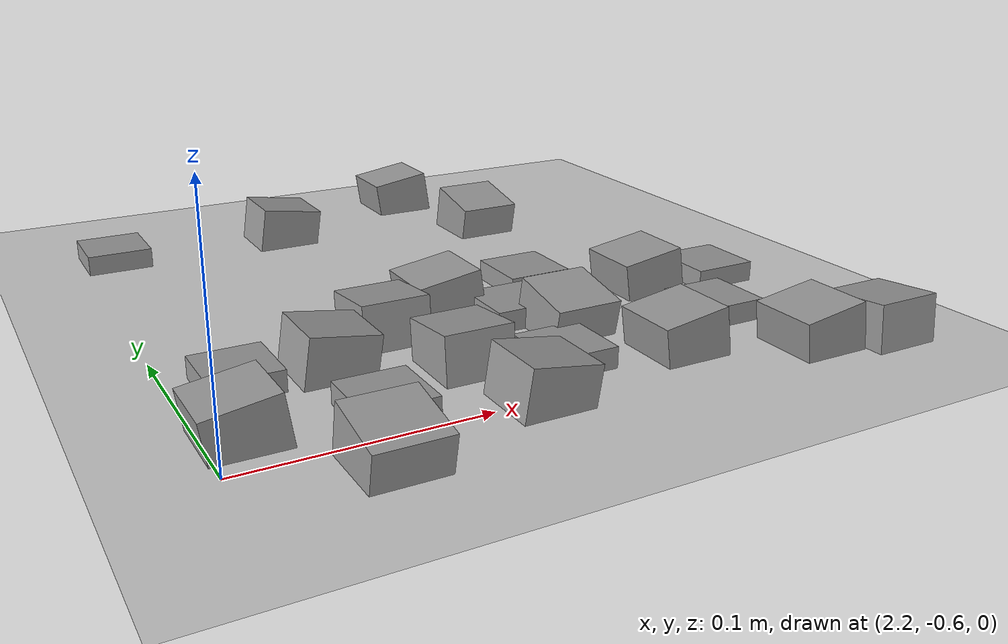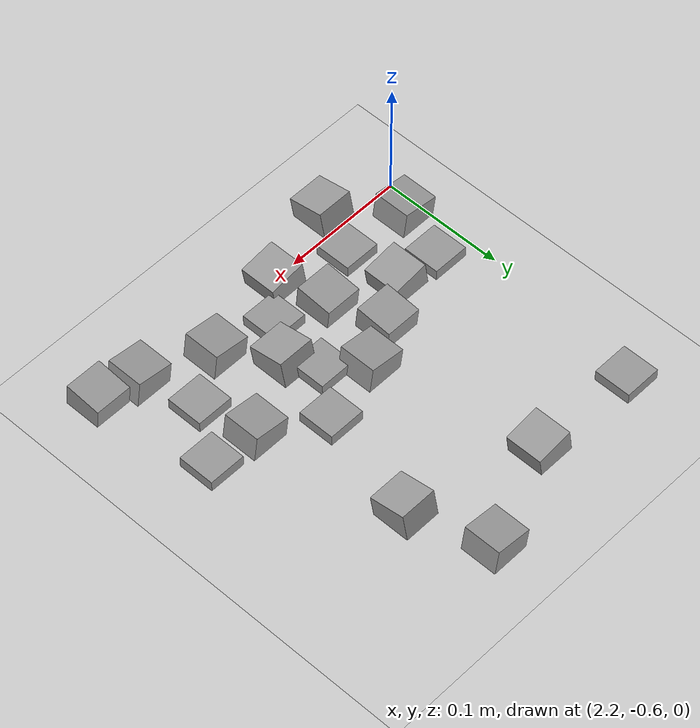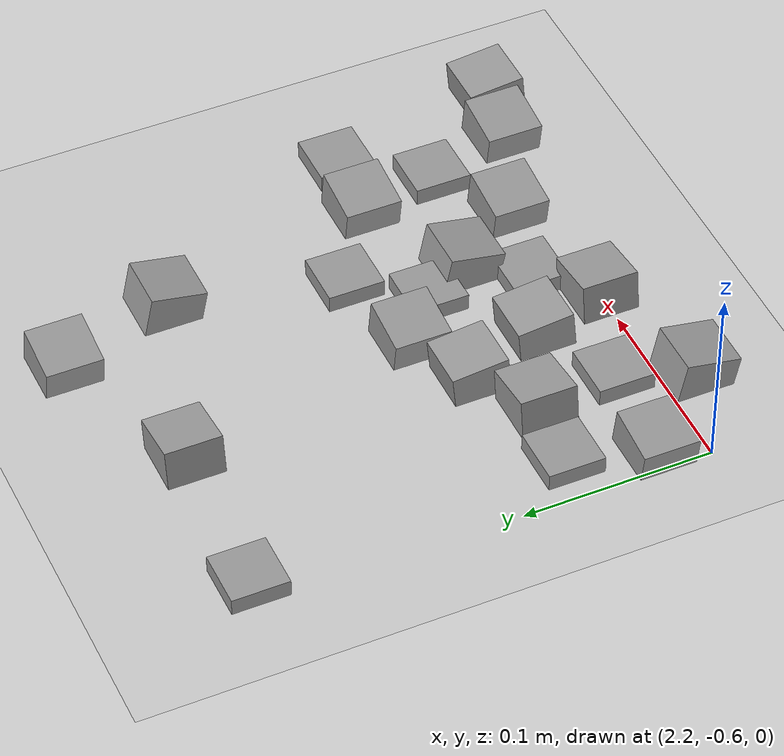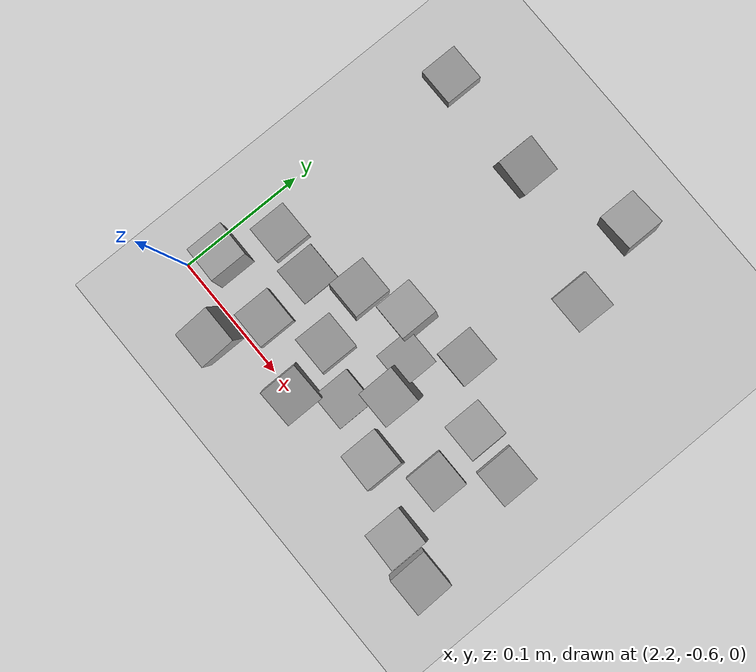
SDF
<sdf version="1.7">
 <world name="default">
  <model name="ground_plane">
   <static>1</static>
   <link name="link">
    <collision name="collision">
     <geometry><plane><normal>0 0 1</normal><size>100 100</size></plane></geometry>
     <surface><friction><ode><mu>100</mu><mu2>50</mu2></ode></friction></surface>
    </collision>
    <visual name="visual">
     <cast_shadows>0</cast_shadows>
     <geometry><plane><normal>0 0 1</normal><size>100 100</size></plane></geometry>
     <material>
      <script><uri>file://media/materials/scripts/gazebo.material</uri><name>Gazebo/Grey</name></script>
     </material>
    </visual>
   </link>
  </model>
  <model name="stone_road_4">
   <link name="link_0_clone_12">
    <inertial>
     <mass>1</mass>
     <inertia>
      <ixx>0.166667</ixx>
      <ixy>0</ixy>
      <ixz>0</ixz>
      <iyy>0.166667</iyy>
      <iyz>0</iyz>
      <izz>0.166667</izz>
     </inertia>
    </inertial>
    <pose>0.142624 -0.262715 0.003778 0.2 -0 0</pose>
    <kinematic>1</kinematic>
    <visual name="visual">
     <geometry><box><size>0.03 0.03 0.03</size></box></geometry>
     <material>
      <lighting>1</lighting>
      <script><uri>file://media/materials/scripts/gazebo.material</uri><name>Gazebo/Grey</name></script>
      <shader type="pixel"><normal_map>__default__</normal_map></shader>
      <ambient>0.3 0.3 0.3 1</ambient>
      <diffuse>0.7 0.7 0.7 1</diffuse>
      <specular>0.01 0.01 0.01 1</specular>
      <emissive>0 0 0 1</emissive>
     </material>
    </visual>
    <collision name="collision">
     <geometry><box><size>0.03 0.03 0.03</size></box></geometry>
     <surface>
      <friction>
       <ode><mu>1</mu><mu2>1</mu2><fdir1>0 0 0</fdir1><slip1>0</slip1><slip2>0</slip2></ode>
       <torsional>
        <coefficient>1</coefficient>
        <patch_radius>0</patch_radius>
        <surface_radius>0</surface_radius>
        <use_patch_radius>1</use_patch_radius>
        <ode><slip>0</slip></ode>
       </torsional>
      </friction>
      <bounce><restitution_coefficient>0</restitution_coefficient><threshold>1e+06</threshold></bounce>
      <contact>
       <collide_without_contact>0</collide_without_contact>
       <collide_without_contact_bitmask>1</collide_without_contact_bitmask>
       <collide_bitmask>1</collide_bitmask>
       <ode>
        <soft_cfm>0</soft_cfm>
        <soft_erp>0.2</soft_erp>
        <kp>1e+13</kp>
        <kd>1</kd>
        <max_vel>0.01</max_vel>
        <min_depth>0</min_depth>
       </ode>
       <bullet>
        <split_impulse>1</split_impulse>
        <split_impulse_penetration_threshold>-0.01</split_impulse_penetration_threshold>
        <soft_cfm>0</soft_cfm>
        <soft_erp>0.2</soft_erp>
        <kp>1e+13</kp>
        <kd>1</kd>
       </bullet>
      </contact>
     </surface>
    </collision>
   </link>
   <link name="link_0_clone_2_clone_2_clone_13_clone_clone_16_clone_29">
    <inertial>
     <mass>1</mass>
     <inertia>
      <ixx>0.166667</ixx>
      <ixy>0</ixy>
      <ixz>0</ixz>
      <iyy>0.166667</iyy>
      <iyz>0</iyz>
      <izz>0.166667</izz>
     </inertia>
    </inertial>
    <pose>-0.042964 -0.229632 -0.006222 0 -0 0</pose>
    <kinematic>1</kinematic>
    <visual name="visual">
     <geometry><box><size>0.03 0.03 0.03</size></box></geometry>
     <material>
      <lighting>1</lighting>
      <script><uri>file://media/materials/scripts/gazebo.material</uri><name>Gazebo/Grey</name></script>
      <shader type="pixel"><normal_map>__default__</normal_map></shader>
      <ambient>0.3 0.3 0.3 1</ambient>
      <diffuse>0.7 0.7 0.7 1</diffuse>
      <specular>0.01 0.01 0.01 1</specular>
      <emissive>0 0 0 1</emissive>
     </material>
    </visual>
    <collision name="collision">
     <geometry><box><size>0.03 0.03 0.03</size></box></geometry>
     <surface>
      <friction>
       <ode><mu>1</mu><mu2>1</mu2><fdir1>0 0 0</fdir1><slip1>0</slip1><slip2>0</slip2></ode>
       <torsional>
        <coefficient>1</coefficient>
        <patch_radius>0</patch_radius>
        <surface_radius>0</surface_radius>
        <use_patch_radius>1</use_patch_radius>
        <ode><slip>0</slip></ode>
       </torsional>
      </friction>
      <bounce><restitution_coefficient>0</restitution_coefficient><threshold>1e+06</threshold></bounce>
      <contact>
       <collide_without_contact>0</collide_without_contact>
       <collide_without_contact_bitmask>1</collide_without_contact_bitmask>
       <collide_bitmask>1</collide_bitmask>
       <ode>
        <soft_cfm>0</soft_cfm>
        <soft_erp>0.2</soft_erp>
        <kp>1e+13</kp>
        <kd>1</kd>
        <max_vel>0.01</max_vel>
        <min_depth>0</min_depth>
       </ode>
       <bullet>
        <split_impulse>1</split_impulse>
        <split_impulse_penetration_threshold>-0.01</split_impulse_penetration_threshold>
        <soft_cfm>0</soft_cfm>
        <soft_erp>0.2</soft_erp>
        <kp>1e+13</kp>
        <kd>1</kd>
       </bullet>
      </contact>
     </surface>
    </collision>
   </link>
   <link name="link_0_clone_2_clone_2_clone_8">
    <inertial>
     <mass>1</mass>
     <inertia>
      <ixx>0.166667</ixx>
      <ixy>0</ixy>
      <ixz>0</ixz>
      <iyy>0.166667</iyy>
      <iyz>0</iyz>
      <izz>0.166667</izz>
     </inertia>
    </inertial>
    <pose>0.122141 -0.201696 0.003778 0 -0.15 0</pose>
    <kinematic>1</kinematic>
    <visual name="visual">
     <geometry><box><size>0.03 0.03 0.03</size></box></geometry>
     <material>
      <lighting>1</lighting>
      <script><uri>file://media/materials/scripts/gazebo.material</uri><name>Gazebo/Grey</name></script>
      <shader type="pixel"><normal_map>__default__</normal_map></shader>
      <ambient>0.3 0.3 0.3 1</ambient>
      <diffuse>0.7 0.7 0.7 1</diffuse>
      <specular>0.01 0.01 0.01 1</specular>
      <emissive>0 0 0 1</emissive>
     </material>
    </visual>
    <collision name="collision">
     <geometry><box><size>0.03 0.03 0.03</size></box></geometry>
     <surface>
      <friction>
       <ode><mu>1</mu><mu2>1</mu2><fdir1>0 0 0</fdir1><slip1>0</slip1><slip2>0</slip2></ode>
       <torsional>
        <coefficient>1</coefficient>
        <patch_radius>0</patch_radius>
        <surface_radius>0</surface_radius>
        <use_patch_radius>1</use_patch_radius>
        <ode><slip>0</slip></ode>
       </torsional>
      </friction>
      <bounce><restitution_coefficient>0</restitution_coefficient><threshold>1e+06</threshold></bounce>
      <contact>
       <collide_without_contact>0</collide_without_contact>
       <collide_without_contact_bitmask>1</collide_without_contact_bitmask>
       <collide_bitmask>1</collide_bitmask>
       <ode>
        <soft_cfm>0</soft_cfm>
        <soft_erp>0.2</soft_erp>
        <kp>1e+13</kp>
        <kd>1</kd>
        <max_vel>0.01</max_vel>
        <min_depth>0</min_depth>
       </ode>
       <bullet>
        <split_impulse>1</split_impulse>
        <split_impulse_penetration_threshold>-0.01</split_impulse_penetration_threshold>
        <soft_cfm>0</soft_cfm>
        <soft_erp>0.2</soft_erp>
        <kp>1e+13</kp>
        <kd>1</kd>
       </bullet>
      </contact>
     </surface>
    </collision>
   </link>
   <link name="link_0_clone_2_clone_7">
    <inertial>
     <mass>1</mass>
     <inertia>
      <ixx>0.166667</ixx>
      <ixy>0</ixy>
      <ixz>0</ixz>
      <iyy>0.166667</iyy>
      <iyz>0</iyz>
      <izz>0.166667</izz>
     </inertia>
    </inertial>
    <pose>0.04255 -0.232691 0.003778 0 0.15 0</pose>
    <kinematic>1</kinematic>
    <visual name="visual">
     <geometry><box><size>0.03 0.03 0.03</size></box></geometry>
     <material>
      <lighting>1</lighting>
      <script><uri>file://media/materials/scripts/gazebo.material</uri><name>Gazebo/Grey</name></script>
      <shader type="pixel"><normal_map>__default__</normal_map></shader>
      <ambient>0.3 0.3 0.3 1</ambient>
      <diffuse>0.7 0.7 0.7 1</diffuse>
      <specular>0.01 0.01 0.01 1</specular>
      <emissive>0 0 0 1</emissive>
     </material>
    </visual>
    <collision name="collision">
     <geometry><box><size>0.03 0.03 0.03</size></box></geometry>
     <surface>
      <friction>
       <ode><mu>1</mu><mu2>1</mu2><fdir1>0 0 0</fdir1><slip1>0</slip1><slip2>0</slip2></ode>
       <torsional>
        <coefficient>1</coefficient>
        <patch_radius>0</patch_radius>
        <surface_radius>0</surface_radius>
        <use_patch_radius>1</use_patch_radius>
        <ode><slip>0</slip></ode>
       </torsional>
      </friction>
      <bounce><restitution_coefficient>0</restitution_coefficient><threshold>1e+06</threshold></bounce>
      <contact>
       <collide_without_contact>0</collide_without_contact>
       <collide_without_contact_bitmask>1</collide_without_contact_bitmask>
       <collide_bitmask>1</collide_bitmask>
       <ode>
        <soft_cfm>0</soft_cfm>
        <soft_erp>0.2</soft_erp>
        <kp>1e+13</kp>
        <kd>1</kd>
        <max_vel>0.01</max_vel>
        <min_depth>0</min_depth>
       </ode>
       <bullet>
        <split_impulse>1</split_impulse>
        <split_impulse_penetration_threshold>-0.01</split_impulse_penetration_threshold>
        <soft_cfm>0</soft_cfm>
        <soft_erp>0.2</soft_erp>
        <kp>1e+13</kp>
        <kd>1</kd>
       </bullet>
      </contact>
     </surface>
    </collision>
   </link>
   <static>0</static>
   <pose>2.25857 -0.135925 -0 0 -0 0</pose>
  </model>
  <model name="stone_road_6">
   <link name="link_0_clone_10">
    <inertial>
     <mass>1</mass>
     <inertia>
      <ixx>0.166667</ixx>
      <ixy>0</ixy>
      <ixz>0</ixz>
      <iyy>0.166667</iyy>
      <iyz>0</iyz>
      <izz>0.166667</izz>
     </inertia>
    </inertial>
    <pose>-0.01295 0.17123 0.003778 0.2 -0 0</pose>
    <kinematic>1</kinematic>
    <visual name="visual">
     <geometry><box><size>0.03 0.03 0.03</size></box></geometry>
     <material>
      <lighting>1</lighting>
      <script><uri>file://media/materials/scripts/gazebo.material</uri><name>Gazebo/Grey</name></script>
      <shader type="pixel"><normal_map>__default__</normal_map></shader>
      <ambient>0.3 0.3 0.3 1</ambient>
      <diffuse>0.7 0.7 0.7 1</diffuse>
      <specular>0.01 0.01 0.01 1</specular>
      <emissive>0 0 0 1</emissive>
     </material>
    </visual>
    <collision name="collision">
     <geometry><box><size>0.03 0.03 0.03</size></box></geometry>
     <surface>
      <friction>
       <ode><mu>1</mu><mu2>1</mu2><fdir1>0 0 0</fdir1><slip1>0</slip1><slip2>0</slip2></ode>
       <torsional>
        <coefficient>1</coefficient>
        <patch_radius>0</patch_radius>
        <surface_radius>0</surface_radius>
        <use_patch_radius>1</use_patch_radius>
        <ode><slip>0</slip></ode>
       </torsional>
      </friction>
      <bounce><restitution_coefficient>0</restitution_coefficient><threshold>1e+06</threshold></bounce>
      <contact>
       <collide_without_contact>0</collide_without_contact>
       <collide_without_contact_bitmask>1</collide_without_contact_bitmask>
       <collide_bitmask>1</collide_bitmask>
       <ode>
        <soft_cfm>0</soft_cfm>
        <soft_erp>0.2</soft_erp>
        <kp>1e+13</kp>
        <kd>1</kd>
        <max_vel>0.01</max_vel>
        <min_depth>0</min_depth>
       </ode>
       <bullet>
        <split_impulse>1</split_impulse>
        <split_impulse_penetration_threshold>-0.01</split_impulse_penetration_threshold>
        <soft_cfm>0</soft_cfm>
        <soft_erp>0.2</soft_erp>
        <kp>1e+13</kp>
        <kd>1</kd>
       </bullet>
      </contact>
     </surface>
    </collision>
   </link>
   <link name="link_0_clone_2_clone_2">
    <inertial>
     <mass>1</mass>
     <inertia>
      <ixx>0.166667</ixx>
      <ixy>0</ixy>
      <ixz>0</ixz>
      <iyy>0.166667</iyy>
      <iyz>0</iyz>
      <izz>0.166667</izz>
     </inertia>
    </inertial>
    <pose>0.066563 0.110568 0.003778 0 -0.15 0</pose>
    <kinematic>1</kinematic>
    <visual name="visual">
     <geometry><box><size>0.03 0.03 0.03</size></box></geometry>
     <material>
      <lighting>1</lighting>
      <script><uri>file://media/materials/scripts/gazebo.material</uri><name>Gazebo/Grey</name></script>
      <shader type="pixel"><normal_map>__default__</normal_map></shader>
      <ambient>0.3 0.3 0.3 1</ambient>
      <diffuse>0.7 0.7 0.7 1</diffuse>
      <specular>0.01 0.01 0.01 1</specular>
      <emissive>0 0 0 1</emissive>
     </material>
    </visual>
    <collision name="collision">
     <geometry><box><size>0.03 0.03 0.03</size></box></geometry>
     <surface>
      <friction>
       <ode><mu>1</mu><mu2>1</mu2><fdir1>0 0 0</fdir1><slip1>0</slip1><slip2>0</slip2></ode>
       <torsional>
        <coefficient>1</coefficient>
        <patch_radius>0</patch_radius>
        <surface_radius>0</surface_radius>
        <use_patch_radius>1</use_patch_radius>
        <ode><slip>0</slip></ode>
       </torsional>
      </friction>
      <bounce><restitution_coefficient>0</restitution_coefficient><threshold>1e+06</threshold></bounce>
      <contact>
       <collide_without_contact>0</collide_without_contact>
       <collide_without_contact_bitmask>1</collide_without_contact_bitmask>
       <collide_bitmask>1</collide_bitmask>
       <ode>
        <soft_cfm>0</soft_cfm>
        <soft_erp>0.2</soft_erp>
        <kp>1e+13</kp>
        <kd>1</kd>
        <max_vel>0.01</max_vel>
        <min_depth>0</min_depth>
       </ode>
       <bullet>
        <split_impulse>1</split_impulse>
        <split_impulse_penetration_threshold>-0.01</split_impulse_penetration_threshold>
        <soft_cfm>0</soft_cfm>
        <soft_erp>0.2</soft_erp>
        <kp>1e+13</kp>
        <kd>1</kd>
       </bullet>
      </contact>
     </surface>
    </collision>
   </link>
   <link name="link_0_clone_2_clone_2_clone_11">
    <inertial>
     <mass>1</mass>
     <inertia>
      <ixx>0.166667</ixx>
      <ixy>0</ixy>
      <ixz>0</ixz>
      <iyy>0.166667</iyy>
      <iyz>0</iyz>
      <izz>0.166667</izz>
     </inertia>
    </inertial>
    <pose>-0.050382 0.216558 0.003778 0 -0.15 0</pose>
    <kinematic>1</kinematic>
    <visual name="visual">
     <geometry><box><size>0.03 0.03 0.03</size></box></geometry>
     <material>
      <lighting>1</lighting>
      <script><uri>file://media/materials/scripts/gazebo.material</uri><name>Gazebo/Grey</name></script>
      <shader type="pixel"><normal_map>__default__</normal_map></shader>
      <ambient>0.3 0.3 0.3 1</ambient>
      <diffuse>0.7 0.7 0.7 1</diffuse>
      <specular>0.01 0.01 0.01 1</specular>
      <emissive>0 0 0 1</emissive>
     </material>
    </visual>
    <collision name="collision">
     <geometry><box><size>0.03 0.03 0.03</size></box></geometry>
     <surface>
      <friction>
       <ode><mu>1</mu><mu2>1</mu2><fdir1>0 0 0</fdir1><slip1>0</slip1><slip2>0</slip2></ode>
       <torsional>
        <coefficient>1</coefficient>
        <patch_radius>0</patch_radius>
        <surface_radius>0</surface_radius>
        <use_patch_radius>1</use_patch_radius>
        <ode><slip>0</slip></ode>
       </torsional>
      </friction>
      <bounce><restitution_coefficient>0</restitution_coefficient><threshold>1e+06</threshold></bounce>
      <contact>
       <collide_without_contact>0</collide_without_contact>
       <collide_without_contact_bitmask>1</collide_without_contact_bitmask>
       <collide_bitmask>1</collide_bitmask>
       <ode>
        <soft_cfm>0</soft_cfm>
        <soft_erp>0.2</soft_erp>
        <kp>1e+13</kp>
        <kd>1</kd>
        <max_vel>0.01</max_vel>
        <min_depth>0</min_depth>
       </ode>
       <bullet>
        <split_impulse>1</split_impulse>
        <split_impulse_penetration_threshold>-0.01</split_impulse_penetration_threshold>
        <soft_cfm>0</soft_cfm>
        <soft_erp>0.2</soft_erp>
        <kp>1e+13</kp>
        <kd>1</kd>
       </bullet>
      </contact>
     </surface>
    </collision>
   </link>
   <link name="link_0_clone_2_clone_2_clone_12">
    <inertial>
     <mass>1</mass>
     <inertia>
      <ixx>0.166667</ixx>
      <ixy>0</ixy>
      <ixz>0</ixz>
      <iyy>0.166667</iyy>
      <iyz>0</iyz>
      <izz>0.166667</izz>
     </inertia>
    </inertial>
    <pose>0.044693 0.200081 0.003778 0 -0.15 0</pose>
    <kinematic>1</kinematic>
    <visual name="visual">
     <geometry><box><size>0.03 0.03 0.03</size></box></geometry>
     <material>
      <lighting>1</lighting>
      <script><uri>file://media/materials/scripts/gazebo.material</uri><name>Gazebo/Grey</name></script>
      <shader type="pixel"><normal_map>__default__</normal_map></shader>
      <ambient>0.3 0.3 0.3 1</ambient>
      <diffuse>0.7 0.7 0.7 1</diffuse>
      <specular>0.01 0.01 0.01 1</specular>
      <emissive>0 0 0 1</emissive>
     </material>
    </visual>
    <collision name="collision">
     <geometry><box><size>0.03 0.03 0.03</size></box></geometry>
     <surface>
      <friction>
       <ode><mu>1</mu><mu2>1</mu2><fdir1>0 0 0</fdir1><slip1>0</slip1><slip2>0</slip2></ode>
       <torsional>
        <coefficient>1</coefficient>
        <patch_radius>0</patch_radius>
        <surface_radius>0</surface_radius>
        <use_patch_radius>1</use_patch_radius>
        <ode><slip>0</slip></ode>
       </torsional>
      </friction>
      <bounce><restitution_coefficient>0</restitution_coefficient><threshold>1e+06</threshold></bounce>
      <contact>
       <collide_without_contact>0</collide_without_contact>
       <collide_without_contact_bitmask>1</collide_without_contact_bitmask>
       <collide_bitmask>1</collide_bitmask>
       <ode>
        <soft_cfm>0</soft_cfm>
        <soft_erp>0.2</soft_erp>
        <kp>1e+13</kp>
        <kd>1</kd>
        <max_vel>0.01</max_vel>
        <min_depth>0</min_depth>
       </ode>
       <bullet>
        <split_impulse>1</split_impulse>
        <split_impulse_penetration_threshold>-0.01</split_impulse_penetration_threshold>
        <soft_cfm>0</soft_cfm>
        <soft_erp>0.2</soft_erp>
        <kp>1e+13</kp>
        <kd>1</kd>
       </bullet>
      </contact>
     </surface>
    </collision>
   </link>
   <link name="link_0_clone_2_clone_2_clone_13">
    <inertial>
     <mass>1</mass>
     <inertia>
      <ixx>0.166667</ixx>
      <ixy>0</ixy>
      <ixz>0</ixz>
      <iyy>0.166667</iyy>
      <iyz>0</iyz>
      <izz>0.166667</izz>
     </inertia>
    </inertial>
    <pose>0.014407 0.13189 0.003778 0 -0.15 0</pose>
    <kinematic>1</kinematic>
    <visual name="visual">
     <geometry><box><size>0.03 0.03 0.03</size></box></geometry>
     <material>
      <lighting>1</lighting>
      <script><uri>file://media/materials/scripts/gazebo.material</uri><name>Gazebo/Grey</name></script>
      <shader type="pixel"><normal_map>__default__</normal_map></shader>
      <ambient>0.3 0.3 0.3 1</ambient>
      <diffuse>0.7 0.7 0.7 1</diffuse>
      <specular>0.01 0.01 0.01 1</specular>
      <emissive>0 0 0 1</emissive>
     </material>
    </visual>
    <collision name="collision">
     <geometry><box><size>0.03 0.03 0.03</size></box></geometry>
     <surface>
      <friction>
       <ode><mu>1</mu><mu2>1</mu2><fdir1>0 0 0</fdir1><slip1>0</slip1><slip2>0</slip2></ode>
       <torsional>
        <coefficient>1</coefficient>
        <patch_radius>0</patch_radius>
        <surface_radius>0</surface_radius>
        <use_patch_radius>1</use_patch_radius>
        <ode><slip>0</slip></ode>
       </torsional>
      </friction>
      <bounce><restitution_coefficient>0</restitution_coefficient><threshold>1e+06</threshold></bounce>
      <contact>
       <collide_without_contact>0</collide_without_contact>
       <collide_without_contact_bitmask>1</collide_without_contact_bitmask>
       <collide_bitmask>1</collide_bitmask>
       <ode>
        <soft_cfm>0</soft_cfm>
        <soft_erp>0.2</soft_erp>
        <kp>1e+13</kp>
        <kd>1</kd>
        <max_vel>0.01</max_vel>
        <min_depth>0</min_depth>
       </ode>
       <bullet>
        <split_impulse>1</split_impulse>
        <split_impulse_penetration_threshold>-0.01</split_impulse_penetration_threshold>
        <soft_cfm>0</soft_cfm>
        <soft_erp>0.2</soft_erp>
        <kp>1e+13</kp>
        <kd>1</kd>
       </bullet>
      </contact>
     </surface>
    </collision>
   </link>
   <link name="link_0_clone_2_clone_2_clone_13_clone_clone_1">
    <inertial>
     <mass>1</mass>
     <inertia>
      <ixx>0.166667</ixx>
      <ixy>0</ixy>
      <ixz>0</ixz>
      <iyy>0.166667</iyy>
      <iyz>0</iyz>
      <izz>0.166667</izz>
     </inertia>
    </inertial>
    <pose>0.098415 0.103772 0.003778 -0.1 0 0</pose>
    <kinematic>1</kinematic>
    <visual name="visual">
     <geometry><box><size>0.03 0.03 0.03</size></box></geometry>
     <material>
      <lighting>1</lighting>
      <script><uri>file://media/materials/scripts/gazebo.material</uri><name>Gazebo/Grey</name></script>
      <shader type="pixel"><normal_map>__default__</normal_map></shader>
      <ambient>0.3 0.3 0.3 1</ambient>
      <diffuse>0.7 0.7 0.7 1</diffuse>
      <specular>0.01 0.01 0.01 1</specular>
      <emissive>0 0 0 1</emissive>
     </material>
    </visual>
    <collision name="collision">
     <geometry><box><size>0.03 0.03 0.03</size></box></geometry>
     <surface>
      <friction>
       <ode><mu>1</mu><mu2>1</mu2><fdir1>0 0 0</fdir1><slip1>0</slip1><slip2>0</slip2></ode>
       <torsional>
        <coefficient>1</coefficient>
        <patch_radius>0</patch_radius>
        <surface_radius>0</surface_radius>
        <use_patch_radius>1</use_patch_radius>
        <ode><slip>0</slip></ode>
       </torsional>
      </friction>
      <bounce><restitution_coefficient>0</restitution_coefficient><threshold>1e+06</threshold></bounce>
      <contact>
       <collide_without_contact>0</collide_without_contact>
       <collide_without_contact_bitmask>1</collide_without_contact_bitmask>
       <collide_bitmask>1</collide_bitmask>
       <ode>
        <soft_cfm>0</soft_cfm>
        <soft_erp>0.2</soft_erp>
        <kp>1e+13</kp>
        <kd>1</kd>
        <max_vel>0.01</max_vel>
        <min_depth>0</min_depth>
       </ode>
       <bullet>
        <split_impulse>1</split_impulse>
        <split_impulse_penetration_threshold>-0.01</split_impulse_penetration_threshold>
        <soft_cfm>0</soft_cfm>
        <soft_erp>0.2</soft_erp>
        <kp>1e+13</kp>
        <kd>1</kd>
       </bullet>
      </contact>
     </surface>
    </collision>
   </link>
   <link name="link_0_clone_2_clone_2_clone_13_clone_clone_13">
    <inertial>
     <mass>1</mass>
     <inertia>
      <ixx>0.166667</ixx>
      <ixy>0</ixy>
      <ixz>0</ixz>
      <iyy>0.166667</iyy>
      <iyz>0</iyz>
      <izz>0.166667</izz>
     </inertia>
    </inertial>
    <pose>-0.069861 0.157394 0.003778 -0.1 0 0</pose>
    <kinematic>1</kinematic>
    <visual name="visual">
     <geometry><box><size>0.03 0.03 0.03</size></box></geometry>
     <material>
      <lighting>1</lighting>
      <script><uri>file://media/materials/scripts/gazebo.material</uri><name>Gazebo/Grey</name></script>
      <shader type="pixel"><normal_map>__default__</normal_map></shader>
      <ambient>0.3 0.3 0.3 1</ambient>
      <diffuse>0.7 0.7 0.7 1</diffuse>
      <specular>0.01 0.01 0.01 1</specular>
      <emissive>0 0 0 1</emissive>
     </material>
    </visual>
    <collision name="collision">
     <geometry><box><size>0.03 0.03 0.03</size></box></geometry>
     <surface>
      <friction>
       <ode><mu>1</mu><mu2>1</mu2><fdir1>0 0 0</fdir1><slip1>0</slip1><slip2>0</slip2></ode>
       <torsional>
        <coefficient>1</coefficient>
        <patch_radius>0</patch_radius>
        <surface_radius>0</surface_radius>
        <use_patch_radius>1</use_patch_radius>
        <ode><slip>0</slip></ode>
       </torsional>
      </friction>
      <bounce><restitution_coefficient>0</restitution_coefficient><threshold>1e+06</threshold></bounce>
      <contact>
       <collide_without_contact>0</collide_without_contact>
       <collide_without_contact_bitmask>1</collide_without_contact_bitmask>
       <collide_bitmask>1</collide_bitmask>
       <ode>
        <soft_cfm>0</soft_cfm>
        <soft_erp>0.2</soft_erp>
        <kp>1e+13</kp>
        <kd>1</kd>
        <max_vel>0.01</max_vel>
        <min_depth>0</min_depth>
       </ode>
       <bullet>
        <split_impulse>1</split_impulse>
        <split_impulse_penetration_threshold>-0.01</split_impulse_penetration_threshold>
        <soft_cfm>0</soft_cfm>
        <soft_erp>0.2</soft_erp>
        <kp>1e+13</kp>
        <kd>1</kd>
       </bullet>
      </contact>
     </surface>
    </collision>
   </link>
   <link name="link_0_clone_2_clone_2_clone_13_clone_clone_15">
    <inertial>
     <mass>1</mass>
     <inertia>
      <ixx>0.166667</ixx>
      <ixy>0</ixy>
      <ixz>0</ixz>
      <iyy>0.166667</iyy>
      <iyz>0</iyz>
      <izz>0.166667</izz>
     </inertia>
    </inertial>
    <pose>-0.084893 0.19984 0.003778 -0.1 0 0</pose>
    <kinematic>1</kinematic>
    <visual name="visual">
     <geometry><box><size>0.03 0.03 0.03</size></box></geometry>
     <material>
      <lighting>1</lighting>
      <script><uri>file://media/materials/scripts/gazebo.material</uri><name>Gazebo/Grey</name></script>
      <shader type="pixel"><normal_map>__default__</normal_map></shader>
      <ambient>0.3 0.3 0.3 1</ambient>
      <diffuse>0.7 0.7 0.7 1</diffuse>
      <specular>0.01 0.01 0.01 1</specular>
      <emissive>0 0 0 1</emissive>
     </material>
    </visual>
    <collision name="collision">
     <geometry><box><size>0.03 0.03 0.03</size></box></geometry>
     <surface>
      <friction>
       <ode><mu>1</mu><mu2>1</mu2><fdir1>0 0 0</fdir1><slip1>0</slip1><slip2>0</slip2></ode>
       <torsional>
        <coefficient>1</coefficient>
        <patch_radius>0</patch_radius>
        <surface_radius>0</surface_radius>
        <use_patch_radius>1</use_patch_radius>
        <ode><slip>0</slip></ode>
       </torsional>
      </friction>
      <bounce><restitution_coefficient>0</restitution_coefficient><threshold>1e+06</threshold></bounce>
      <contact>
       <collide_without_contact>0</collide_without_contact>
       <collide_without_contact_bitmask>1</collide_without_contact_bitmask>
       <collide_bitmask>1</collide_bitmask>
       <ode>
        <soft_cfm>0</soft_cfm>
        <soft_erp>0.2</soft_erp>
        <kp>1e+13</kp>
        <kd>1</kd>
        <max_vel>0.01</max_vel>
        <min_depth>0</min_depth>
       </ode>
       <bullet>
        <split_impulse>1</split_impulse>
        <split_impulse_penetration_threshold>-0.01</split_impulse_penetration_threshold>
        <soft_cfm>0</soft_cfm>
        <soft_erp>0.2</soft_erp>
        <kp>1e+13</kp>
        <kd>1</kd>
       </bullet>
      </contact>
     </surface>
    </collision>
   </link>
   <link name="link_0_clone_2_clone_2_clone_13_clone_clone_16_clone">
    <inertial>
     <mass>1</mass>
     <inertia>
      <ixx>0.166667</ixx>
      <ixy>0</ixy>
      <ixz>0</ixz>
      <iyy>0.166667</iyy>
      <iyz>0</iyz>
      <izz>0.166667</izz>
     </inertia>
    </inertial>
    <pose>0.0535 0.156403 -0.006222 0 -0 0</pose>
    <kinematic>1</kinematic>
    <visual name="visual">
     <geometry><box><size>0.03 0.03 0.03</size></box></geometry>
     <material>
      <lighting>1</lighting>
      <script><uri>file://media/materials/scripts/gazebo.material</uri><name>Gazebo/Grey</name></script>
      <shader type="pixel"><normal_map>__default__</normal_map></shader>
      <ambient>0.3 0.3 0.3 1</ambient>
      <diffuse>0.7 0.7 0.7 1</diffuse>
      <specular>0.01 0.01 0.01 1</specular>
      <emissive>0 0 0 1</emissive>
     </material>
    </visual>
    <collision name="collision">
     <geometry><box><size>0.03 0.03 0.03</size></box></geometry>
     <surface>
      <friction>
       <ode><mu>1</mu><mu2>1</mu2><fdir1>0 0 0</fdir1><slip1>0</slip1><slip2>0</slip2></ode>
       <torsional>
        <coefficient>1</coefficient>
        <patch_radius>0</patch_radius>
        <surface_radius>0</surface_radius>
        <use_patch_radius>1</use_patch_radius>
        <ode><slip>0</slip></ode>
       </torsional>
      </friction>
      <bounce><restitution_coefficient>0</restitution_coefficient><threshold>1e+06</threshold></bounce>
      <contact>
       <collide_without_contact>0</collide_without_contact>
       <collide_without_contact_bitmask>1</collide_without_contact_bitmask>
       <collide_bitmask>1</collide_bitmask>
       <ode>
        <soft_cfm>0</soft_cfm>
        <soft_erp>0.2</soft_erp>
        <kp>1e+13</kp>
        <kd>1</kd>
        <max_vel>0.01</max_vel>
        <min_depth>0</min_depth>
       </ode>
       <bullet>
        <split_impulse>1</split_impulse>
        <split_impulse_penetration_threshold>-0.01</split_impulse_penetration_threshold>
        <soft_cfm>0</soft_cfm>
        <soft_erp>0.2</soft_erp>
        <kp>1e+13</kp>
        <kd>1</kd>
       </bullet>
      </contact>
     </surface>
    </collision>
   </link>
   <link name="link_0_clone_2_clone_2_clone_13_clone_clone_16_clone_21">
    <inertial>
     <mass>1</mass>
     <inertia>
      <ixx>0.166667</ixx>
      <ixy>0</ixy>
      <ixz>0</ixz>
      <iyy>0.166667</iyy>
      <iyz>0</iyz>
      <izz>0.166667</izz>
     </inertia>
    </inertial>
    <pose>-0.032398 0.142589 -0.006222 0 -0 0</pose>
    <kinematic>1</kinematic>
    <visual name="visual">
     <geometry><box><size>0.03 0.03 0.03</size></box></geometry>
     <material>
      <lighting>1</lighting>
      <script><uri>file://media/materials/scripts/gazebo.material</uri><name>Gazebo/Grey</name></script>
      <shader type="pixel"><normal_map>__default__</normal_map></shader>
      <ambient>0.3 0.3 0.3 1</ambient>
      <diffuse>0.7 0.7 0.7 1</diffuse>
      <specular>0.01 0.01 0.01 1</specular>
      <emissive>0 0 0 1</emissive>
     </material>
    </visual>
    <collision name="collision">
     <geometry><box><size>0.03 0.03 0.03</size></box></geometry>
     <surface>
      <friction>
       <ode><mu>1</mu><mu2>1</mu2><fdir1>0 0 0</fdir1><slip1>0</slip1><slip2>0</slip2></ode>
       <torsional>
        <coefficient>1</coefficient>
        <patch_radius>0</patch_radius>
        <surface_radius>0</surface_radius>
        <use_patch_radius>1</use_patch_radius>
        <ode><slip>0</slip></ode>
       </torsional>
      </friction>
      <bounce><restitution_coefficient>0</restitution_coefficient><threshold>1e+06</threshold></bounce>
      <contact>
       <collide_without_contact>0</collide_without_contact>
       <collide_without_contact_bitmask>1</collide_without_contact_bitmask>
       <collide_bitmask>1</collide_bitmask>
       <ode>
        <soft_cfm>0</soft_cfm>
        <soft_erp>0.2</soft_erp>
        <kp>1e+13</kp>
        <kd>1</kd>
        <max_vel>0.01</max_vel>
        <min_depth>0</min_depth>
       </ode>
       <bullet>
        <split_impulse>1</split_impulse>
        <split_impulse_penetration_threshold>-0.01</split_impulse_penetration_threshold>
        <soft_cfm>0</soft_cfm>
        <soft_erp>0.2</soft_erp>
        <kp>1e+13</kp>
        <kd>1</kd>
       </bullet>
      </contact>
     </surface>
    </collision>
   </link>
   <link name="link_0_clone_2_clone_2_clone_13_clone_clone_16_clone_22">
    <inertial>
     <mass>1</mass>
     <inertia>
      <ixx>0.166667</ixx>
      <ixy>0</ixy>
      <ixz>0</ixz>
      <iyy>0.166667</iyy>
      <iyz>0</iyz>
      <izz>0.166667</izz>
     </inertia>
    </inertial>
    <pose>-0.025872 0.194724 -0.006222 0 -0 0</pose>
    <kinematic>1</kinematic>
    <visual name="visual">
     <geometry><box><size>0.03 0.03 0.03</size></box></geometry>
     <material>
      <lighting>1</lighting>
      <script><uri>file://media/materials/scripts/gazebo.material</uri><name>Gazebo/Grey</name></script>
      <shader type="pixel"><normal_map>__default__</normal_map></shader>
      <ambient>0.3 0.3 0.3 1</ambient>
      <diffuse>0.7 0.7 0.7 1</diffuse>
      <specular>0.01 0.01 0.01 1</specular>
      <emissive>0 0 0 1</emissive>
     </material>
    </visual>
    <collision name="collision">
     <geometry><box><size>0.03 0.03 0.03</size></box></geometry>
     <surface>
      <friction>
       <ode><mu>1</mu><mu2>1</mu2><fdir1>0 0 0</fdir1><slip1>0</slip1><slip2>0</slip2></ode>
       <torsional>
        <coefficient>1</coefficient>
        <patch_radius>0</patch_radius>
        <surface_radius>0</surface_radius>
        <use_patch_radius>1</use_patch_radius>
        <ode><slip>0</slip></ode>
       </torsional>
      </friction>
      <bounce><restitution_coefficient>0</restitution_coefficient><threshold>1e+06</threshold></bounce>
      <contact>
       <collide_without_contact>0</collide_without_contact>
       <collide_without_contact_bitmask>1</collide_without_contact_bitmask>
       <collide_bitmask>1</collide_bitmask>
       <ode>
        <soft_cfm>0</soft_cfm>
        <soft_erp>0.2</soft_erp>
        <kp>1e+13</kp>
        <kd>1</kd>
        <max_vel>0.01</max_vel>
        <min_depth>0</min_depth>
       </ode>
       <bullet>
        <split_impulse>1</split_impulse>
        <split_impulse_penetration_threshold>-0.01</split_impulse_penetration_threshold>
        <soft_cfm>0</soft_cfm>
        <soft_erp>0.2</soft_erp>
        <kp>1e+13</kp>
        <kd>1</kd>
       </bullet>
      </contact>
     </surface>
    </collision>
   </link>
   <link name="link_0_clone_2_clone_2_clone_13_clone_clone_16_clone_23">
    <inertial>
     <mass>1</mass>
     <inertia>
      <ixx>0.166667</ixx>
      <ixy>0</ixy>
      <ixz>0</ixz>
      <iyy>0.166667</iyy>
      <iyz>0</iyz>
      <izz>0.166667</izz>
     </inertia>
    </inertial>
    <pose>0.000385 0.228664 -0.006222 0 -0 0</pose>
    <kinematic>1</kinematic>
    <visual name="visual">
     <geometry><box><size>0.03 0.03 0.03</size></box></geometry>
     <material>
      <lighting>1</lighting>
      <script><uri>file://media/materials/scripts/gazebo.material</uri><name>Gazebo/Grey</name></script>
      <shader type="pixel"><normal_map>__default__</normal_map></shader>
      <ambient>0.3 0.3 0.3 1</ambient>
      <diffuse>0.7 0.7 0.7 1</diffuse>
      <specular>0.01 0.01 0.01 1</specular>
      <emissive>0 0 0 1</emissive>
     </material>
    </visual>
    <collision name="collision">
     <geometry><box><size>0.03 0.03 0.03</size></box></geometry>
     <surface>
      <friction>
       <ode><mu>1</mu><mu2>1</mu2><fdir1>0 0 0</fdir1><slip1>0</slip1><slip2>0</slip2></ode>
       <torsional>
        <coefficient>1</coefficient>
        <patch_radius>0</patch_radius>
        <surface_radius>0</surface_radius>
        <use_patch_radius>1</use_patch_radius>
        <ode><slip>0</slip></ode>
       </torsional>
      </friction>
      <bounce><restitution_coefficient>0</restitution_coefficient><threshold>1e+06</threshold></bounce>
      <contact>
       <collide_without_contact>0</collide_without_contact>
       <collide_without_contact_bitmask>1</collide_without_contact_bitmask>
       <collide_bitmask>1</collide_bitmask>
       <ode>
        <soft_cfm>0</soft_cfm>
        <soft_erp>0.2</soft_erp>
        <kp>1e+13</kp>
        <kd>1</kd>
        <max_vel>0.01</max_vel>
        <min_depth>0</min_depth>
       </ode>
       <bullet>
        <split_impulse>1</split_impulse>
        <split_impulse_penetration_threshold>-0.01</split_impulse_penetration_threshold>
        <soft_cfm>0</soft_cfm>
        <soft_erp>0.2</soft_erp>
        <kp>1e+13</kp>
        <kd>1</kd>
       </bullet>
      </contact>
     </surface>
    </collision>
   </link>
   <link name="link_0_clone_2_clone_2_clone_13_clone_clone_16_clone_24">
    <inertial>
     <mass>1</mass>
     <inertia>
      <ixx>0.166667</ixx>
      <ixy>0</ixy>
      <ixz>0</ixz>
      <iyy>0.166667</iyy>
      <iyz>0</iyz>
      <izz>0.166667</izz>
     </inertia>
    </inertial>
    <pose>0.08246 0.196776 -0.006222 0 -0 0</pose>
    <kinematic>1</kinematic>
    <visual name="visual">
     <geometry><box><size>0.03 0.03 0.03</size></box></geometry>
     <material>
      <lighting>1</lighting>
      <script><uri>file://media/materials/scripts/gazebo.material</uri><name>Gazebo/Grey</name></script>
      <shader type="pixel"><normal_map>__default__</normal_map></shader>
      <ambient>0.3 0.3 0.3 1</ambient>
      <diffuse>0.7 0.7 0.7 1</diffuse>
      <specular>0.01 0.01 0.01 1</specular>
      <emissive>0 0 0 1</emissive>
     </material>
    </visual>
    <collision name="collision">
     <geometry><box><size>0.03 0.03 0.03</size></box></geometry>
     <surface>
      <friction>
       <ode><mu>1</mu><mu2>1</mu2><fdir1>0 0 0</fdir1><slip1>0</slip1><slip2>0</slip2></ode>
       <torsional>
        <coefficient>1</coefficient>
        <patch_radius>0</patch_radius>
        <surface_radius>0</surface_radius>
        <use_patch_radius>1</use_patch_radius>
        <ode><slip>0</slip></ode>
       </torsional>
      </friction>
      <bounce><restitution_coefficient>0</restitution_coefficient><threshold>1e+06</threshold></bounce>
      <contact>
       <collide_without_contact>0</collide_without_contact>
       <collide_without_contact_bitmask>1</collide_without_contact_bitmask>
       <collide_bitmask>1</collide_bitmask>
       <ode>
        <soft_cfm>0</soft_cfm>
        <soft_erp>0.2</soft_erp>
        <kp>1e+13</kp>
        <kd>1</kd>
        <max_vel>0.01</max_vel>
        <min_depth>0</min_depth>
       </ode>
       <bullet>
        <split_impulse>1</split_impulse>
        <split_impulse_penetration_threshold>-0.01</split_impulse_penetration_threshold>
        <soft_cfm>0</soft_cfm>
        <soft_erp>0.2</soft_erp>
        <kp>1e+13</kp>
        <kd>1</kd>
       </bullet>
      </contact>
     </surface>
    </collision>
   </link>
   <link name="link_0_clone_2_clone_2_clone_13_clone_clone_16_clone_25">
    <inertial>
     <mass>1</mass>
     <inertia>
      <ixx>0.166667</ixx>
      <ixy>0</ixy>
      <ixz>0</ixz>
      <iyy>0.166667</iyy>
      <iyz>0</iyz>
      <izz>0.166667</izz>
     </inertia>
    </inertial>
    <pose>-0.15326 0.182661 -0.006222 0 -0 0</pose>
    <kinematic>1</kinematic>
    <visual name="visual">
     <geometry><box><size>0.03 0.03 0.03</size></box></geometry>
     <material>
      <lighting>1</lighting>
      <script><uri>file://media/materials/scripts/gazebo.material</uri><name>Gazebo/Grey</name></script>
      <shader type="pixel"><normal_map>__default__</normal_map></shader>
      <ambient>0.3 0.3 0.3 1</ambient>
      <diffuse>0.7 0.7 0.7 1</diffuse>
      <specular>0.01 0.01 0.01 1</specular>
      <emissive>0 0 0 1</emissive>
     </material>
    </visual>
    <collision name="collision">
     <geometry><box><size>0.03 0.03 0.03</size></box></geometry>
     <surface>
      <friction>
       <ode><mu>1</mu><mu2>1</mu2><fdir1>0 0 0</fdir1><slip1>0</slip1><slip2>0</slip2></ode>
       <torsional>
        <coefficient>1</coefficient>
        <patch_radius>0</patch_radius>
        <surface_radius>0</surface_radius>
        <use_patch_radius>1</use_patch_radius>
        <ode><slip>0</slip></ode>
       </torsional>
      </friction>
      <bounce><restitution_coefficient>0</restitution_coefficient><threshold>1e+06</threshold></bounce>
      <contact>
       <collide_without_contact>0</collide_without_contact>
       <collide_without_contact_bitmask>1</collide_without_contact_bitmask>
       <collide_bitmask>1</collide_bitmask>
       <ode>
        <soft_cfm>0</soft_cfm>
        <soft_erp>0.2</soft_erp>
        <kp>1e+13</kp>
        <kd>1</kd>
        <max_vel>0.01</max_vel>
        <min_depth>0</min_depth>
       </ode>
       <bullet>
        <split_impulse>1</split_impulse>
        <split_impulse_penetration_threshold>-0.01</split_impulse_penetration_threshold>
        <soft_cfm>0</soft_cfm>
        <soft_erp>0.2</soft_erp>
        <kp>1e+13</kp>
        <kd>1</kd>
       </bullet>
      </contact>
     </surface>
    </collision>
   </link>
   <link name="link_0_clone_2_clone_2_clone_13_clone_clone_16_clone_3">
    <inertial>
     <mass>1</mass>
     <inertia>
      <ixx>0.166667</ixx>
      <ixy>0</ixy>
      <ixz>0</ixz>
      <iyy>0.166667</iyy>
      <iyz>0</iyz>
      <izz>0.166667</izz>
     </inertia>
    </inertial>
    <pose>-0.112739 0.135576 -0.006222 0 -0 0</pose>
    <kinematic>1</kinematic>
    <visual name="visual">
     <geometry><box><size>0.03 0.03 0.03</size></box></geometry>
     <material>
      <lighting>1</lighting>
      <script><uri>file://media/materials/scripts/gazebo.material</uri><name>Gazebo/Grey</name></script>
      <shader type="pixel"><normal_map>__default__</normal_map></shader>
      <ambient>0.3 0.3 0.3 1</ambient>
      <diffuse>0.7 0.7 0.7 1</diffuse>
      <specular>0.01 0.01 0.01 1</specular>
      <emissive>0 0 0 1</emissive>
     </material>
    </visual>
    <collision name="collision">
     <geometry><box><size>0.03 0.03 0.03</size></box></geometry>
     <surface>
      <friction>
       <ode><mu>1</mu><mu2>1</mu2><fdir1>0 0 0</fdir1><slip1>0</slip1><slip2>0</slip2></ode>
       <torsional>
        <coefficient>1</coefficient>
        <patch_radius>0</patch_radius>
        <surface_radius>0</surface_radius>
        <use_patch_radius>1</use_patch_radius>
        <ode><slip>0</slip></ode>
       </torsional>
      </friction>
      <bounce><restitution_coefficient>0</restitution_coefficient><threshold>1e+06</threshold></bounce>
      <contact>
       <collide_without_contact>0</collide_without_contact>
       <collide_without_contact_bitmask>1</collide_without_contact_bitmask>
       <collide_bitmask>1</collide_bitmask>
       <ode>
        <soft_cfm>0</soft_cfm>
        <soft_erp>0.2</soft_erp>
        <kp>1e+13</kp>
        <kd>1</kd>
        <max_vel>0.01</max_vel>
        <min_depth>0</min_depth>
       </ode>
       <bullet>
        <split_impulse>1</split_impulse>
        <split_impulse_penetration_threshold>-0.01</split_impulse_penetration_threshold>
        <soft_cfm>0</soft_cfm>
        <soft_erp>0.2</soft_erp>
        <kp>1e+13</kp>
        <kd>1</kd>
       </bullet>
      </contact>
     </surface>
    </collision>
   </link>
   <link name="link_0_clone_2_clone_2_clone_2">
    <inertial>
     <mass>1</mass>
     <inertia>
      <ixx>0.166667</ixx>
      <ixy>0</ixy>
      <ixz>0</ixz>
      <iyy>0.166667</iyy>
      <iyz>0</iyz>
      <izz>0.166667</izz>
     </inertia>
    </inertial>
    <pose>-0.166079 0.139989 0.003778 0 -0.15 0</pose>
    <kinematic>1</kinematic>
    <visual name="visual">
     <geometry><box><size>0.03 0.03 0.03</size></box></geometry>
     <material>
      <lighting>1</lighting>
      <script><uri>file://media/materials/scripts/gazebo.material</uri><name>Gazebo/Grey</name></script>
      <shader type="pixel"><normal_map>__default__</normal_map></shader>
      <ambient>0.3 0.3 0.3 1</ambient>
      <diffuse>0.7 0.7 0.7 1</diffuse>
      <specular>0.01 0.01 0.01 1</specular>
      <emissive>0 0 0 1</emissive>
     </material>
    </visual>
    <collision name="collision">
     <geometry><box><size>0.03 0.03 0.03</size></box></geometry>
     <surface>
      <friction>
       <ode><mu>1</mu><mu2>1</mu2><fdir1>0 0 0</fdir1><slip1>0</slip1><slip2>0</slip2></ode>
       <torsional>
        <coefficient>1</coefficient>
        <patch_radius>0</patch_radius>
        <surface_radius>0</surface_radius>
        <use_patch_radius>1</use_patch_radius>
        <ode><slip>0</slip></ode>
       </torsional>
      </friction>
      <bounce><restitution_coefficient>0</restitution_coefficient><threshold>1e+06</threshold></bounce>
      <contact>
       <collide_without_contact>0</collide_without_contact>
       <collide_without_contact_bitmask>1</collide_without_contact_bitmask>
       <collide_bitmask>1</collide_bitmask>
       <ode>
        <soft_cfm>0</soft_cfm>
        <soft_erp>0.2</soft_erp>
        <kp>1e+13</kp>
        <kd>1</kd>
        <max_vel>0.01</max_vel>
        <min_depth>0</min_depth>
       </ode>
       <bullet>
        <split_impulse>1</split_impulse>
        <split_impulse_penetration_threshold>-0.01</split_impulse_penetration_threshold>
        <soft_cfm>0</soft_cfm>
        <soft_erp>0.2</soft_erp>
        <kp>1e+13</kp>
        <kd>1</kd>
       </bullet>
      </contact>
     </surface>
    </collision>
   </link>
   <link name="link_0_clone_2_clone_3">
    <inertial>
     <mass>1</mass>
     <inertia>
      <ixx>0.166667</ixx>
      <ixy>0</ixy>
      <ixz>0</ixz>
      <iyy>0.166667</iyy>
      <iyz>0</iyz>
      <izz>0.166667</izz>
     </inertia>
    </inertial>
    <pose>-0.058921 0.117271 0.003778 0 0.15 0</pose>
    <kinematic>1</kinematic>
    <visual name="visual">
     <geometry><box><size>0.03 0.03 0.03</size></box></geometry>
     <material>
      <lighting>1</lighting>
      <script><uri>file://media/materials/scripts/gazebo.material</uri><name>Gazebo/Grey</name></script>
      <shader type="pixel"><normal_map>__default__</normal_map></shader>
      <ambient>0.3 0.3 0.3 1</ambient>
      <diffuse>0.7 0.7 0.7 1</diffuse>
      <specular>0.01 0.01 0.01 1</specular>
      <emissive>0 0 0 1</emissive>
     </material>
    </visual>
    <collision name="collision">
     <geometry><box><size>0.03 0.03 0.03</size></box></geometry>
     <surface>
      <friction>
       <ode><mu>1</mu><mu2>1</mu2><fdir1>0 0 0</fdir1><slip1>0</slip1><slip2>0</slip2></ode>
       <torsional>
        <coefficient>1</coefficient>
        <patch_radius>0</patch_radius>
        <surface_radius>0</surface_radius>
        <use_patch_radius>1</use_patch_radius>
        <ode><slip>0</slip></ode>
       </torsional>
      </friction>
      <bounce><restitution_coefficient>0</restitution_coefficient><threshold>1e+06</threshold></bounce>
      <contact>
       <collide_without_contact>0</collide_without_contact>
       <collide_without_contact_bitmask>1</collide_without_contact_bitmask>
       <collide_bitmask>1</collide_bitmask>
       <ode>
        <soft_cfm>0</soft_cfm>
        <soft_erp>0.2</soft_erp>
        <kp>1e+13</kp>
        <kd>1</kd>
        <max_vel>0.01</max_vel>
        <min_depth>0</min_depth>
       </ode>
       <bullet>
        <split_impulse>1</split_impulse>
        <split_impulse_penetration_threshold>-0.01</split_impulse_penetration_threshold>
        <soft_cfm>0</soft_cfm>
        <soft_erp>0.2</soft_erp>
        <kp>1e+13</kp>
        <kd>1</kd>
       </bullet>
      </contact>
     </surface>
    </collision>
   </link>
   <link name="link_0_clone_2_clone_4">
    <inertial>
     <mass>1</mass>
     <inertia>
      <ixx>0.166667</ixx>
      <ixy>0</ixy>
      <ixz>0</ixz>
      <iyy>0.166667</iyy>
      <iyz>0</iyz>
      <izz>0.166667</izz>
     </inertia>
    </inertial>
    <pose>-0.117313 0.179399 0.003778 0 0.15 0</pose>
    <kinematic>1</kinematic>
    <visual name="visual">
     <geometry><box><size>0.03 0.03 0.03</size></box></geometry>
     <material>
      <lighting>1</lighting>
      <script><uri>file://media/materials/scripts/gazebo.material</uri><name>Gazebo/Grey</name></script>
      <shader type="pixel"><normal_map>__default__</normal_map></shader>
      <ambient>0.3 0.3 0.3 1</ambient>
      <diffuse>0.7 0.7 0.7 1</diffuse>
      <specular>0.01 0.01 0.01 1</specular>
      <emissive>0 0 0 1</emissive>
     </material>
    </visual>
    <collision name="collision">
     <geometry><box><size>0.03 0.03 0.03</size></box></geometry>
     <surface>
      <friction>
       <ode><mu>1</mu><mu2>1</mu2><fdir1>0 0 0</fdir1><slip1>0</slip1><slip2>0</slip2></ode>
       <torsional>
        <coefficient>1</coefficient>
        <patch_radius>0</patch_radius>
        <surface_radius>0</surface_radius>
        <use_patch_radius>1</use_patch_radius>
        <ode><slip>0</slip></ode>
       </torsional>
      </friction>
      <bounce><restitution_coefficient>0</restitution_coefficient><threshold>1e+06</threshold></bounce>
      <contact>
       <collide_without_contact>0</collide_without_contact>
       <collide_without_contact_bitmask>1</collide_without_contact_bitmask>
       <collide_bitmask>1</collide_bitmask>
       <ode>
        <soft_cfm>0</soft_cfm>
        <soft_erp>0.2</soft_erp>
        <kp>1e+13</kp>
        <kd>1</kd>
        <max_vel>0.01</max_vel>
        <min_depth>0</min_depth>
       </ode>
       <bullet>
        <split_impulse>1</split_impulse>
        <split_impulse_penetration_threshold>-0.01</split_impulse_penetration_threshold>
        <soft_cfm>0</soft_cfm>
        <soft_erp>0.2</soft_erp>
        <kp>1e+13</kp>
        <kd>1</kd>
       </bullet>
      </contact>
     </surface>
    </collision>
   </link>
   <link name="link_0_clone_3">
    <inertial>
     <mass>1</mass>
     <inertia>
      <ixx>0.166667</ixx>
      <ixy>0</ixy>
      <ixz>0</ixz>
      <iyy>0.166667</iyy>
      <iyz>0</iyz>
      <izz>0.166667</izz>
     </inertia>
    </inertial>
    <pose>-0.126666 0.098861 0.003778 0.2 -0 0</pose>
    <kinematic>1</kinematic>
    <visual name="visual">
     <geometry><box><size>0.03 0.03 0.03</size></box></geometry>
     <material>
      <lighting>1</lighting>
      <script><uri>file://media/materials/scripts/gazebo.material</uri><name>Gazebo/Grey</name></script>
      <shader type="pixel"><normal_map>__default__</normal_map></shader>
      <ambient>0.3 0.3 0.3 1</ambient>
      <diffuse>0.7 0.7 0.7 1</diffuse>
      <specular>0.01 0.01 0.01 1</specular>
      <emissive>0 0 0 1</emissive>
     </material>
    </visual>
    <collision name="collision">
     <geometry><box><size>0.03 0.03 0.03</size></box></geometry>
     <surface>
      <friction>
       <ode><mu>1</mu><mu2>1</mu2><fdir1>0 0 0</fdir1><slip1>0</slip1><slip2>0</slip2></ode>
       <torsional>
        <coefficient>1</coefficient>
        <patch_radius>0</patch_radius>
        <surface_radius>0</surface_radius>
        <use_patch_radius>1</use_patch_radius>
        <ode><slip>0</slip></ode>
       </torsional>
      </friction>
      <bounce><restitution_coefficient>0</restitution_coefficient><threshold>1e+06</threshold></bounce>
      <contact>
       <collide_without_contact>0</collide_without_contact>
       <collide_without_contact_bitmask>1</collide_without_contact_bitmask>
       <collide_bitmask>1</collide_bitmask>
       <ode>
        <soft_cfm>0</soft_cfm>
        <soft_erp>0.2</soft_erp>
        <kp>1e+13</kp>
        <kd>1</kd>
        <max_vel>0.01</max_vel>
        <min_depth>0</min_depth>
       </ode>
       <bullet>
        <split_impulse>1</split_impulse>
        <split_impulse_penetration_threshold>-0.01</split_impulse_penetration_threshold>
        <soft_cfm>0</soft_cfm>
        <soft_erp>0.2</soft_erp>
        <kp>1e+13</kp>
        <kd>1</kd>
       </bullet>
      </contact>
     </surface>
    </collision>
   </link>
   <static>0</static>
   <pose>2.379 -0.715905 -0 0 -0 0</pose>
  </model>
 </world>
</sdf>
